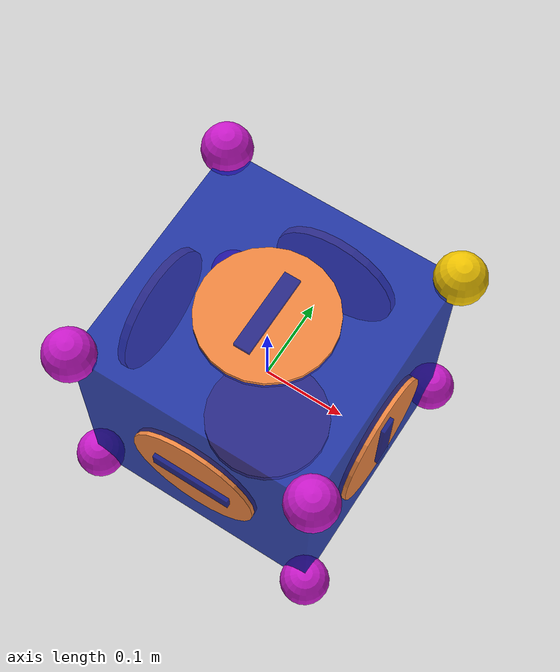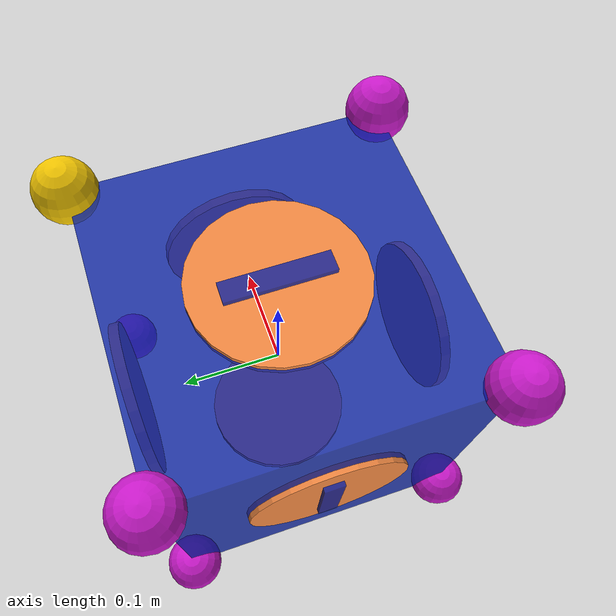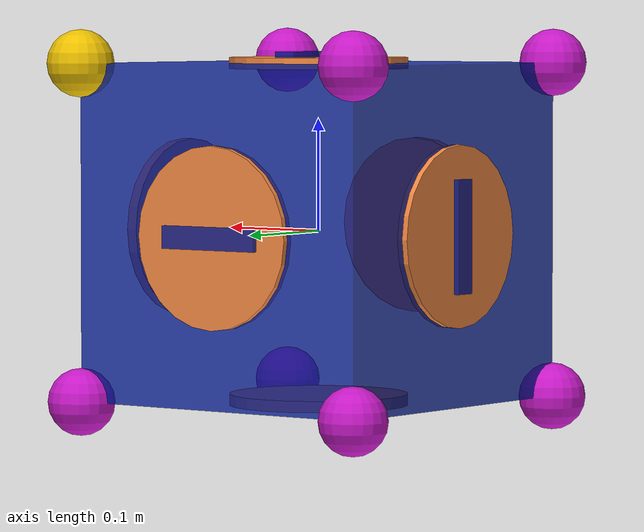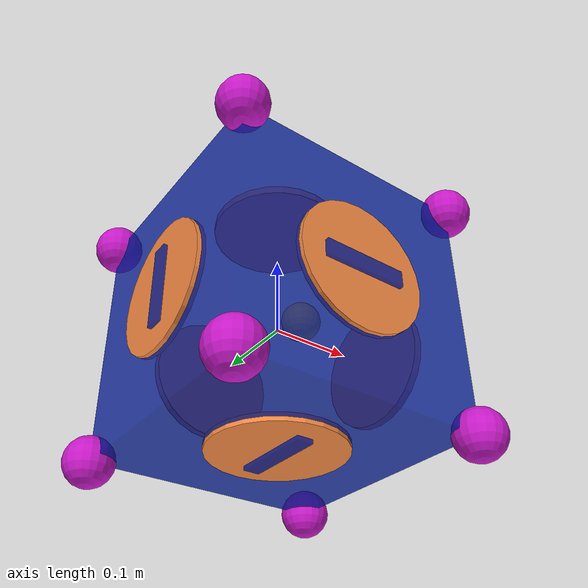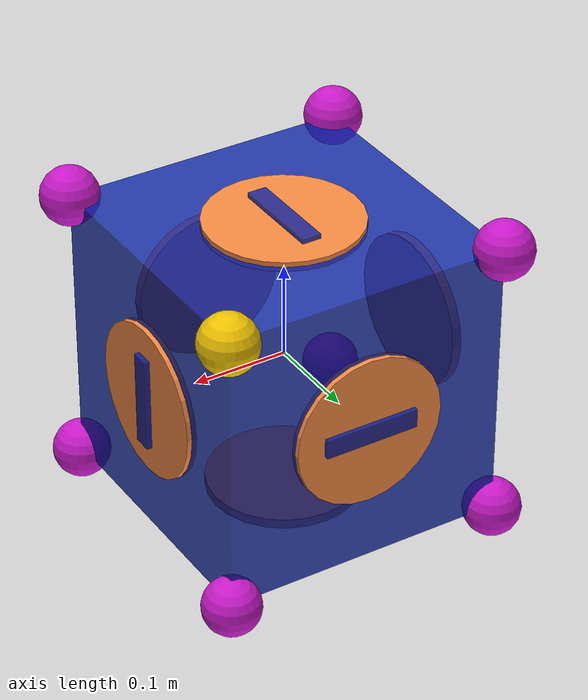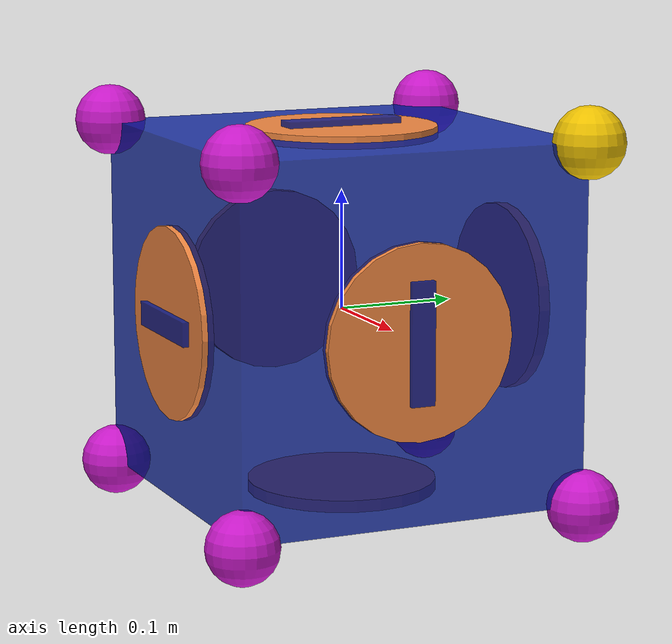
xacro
<?xml version="1.0"?>

<robot name="CubeBot" xmlns:xacro="http://ros.org/wiki/xacro">
    <!-- Properties -->
    <!-- Colors -->
    <xacro:property name="Black" value="0.1 0.1 0.1 1" />
    <xacro:property name="Grey" value="0.35 0.35 0.35 1" />
    <xacro:property name="Orange" value=".9569 .5372 .2588 1" />
    <xacro:property name="Blue" value=".0157 .1176 .6588 0.8" />
    <xacro:property name="Maize" value=".9451 .7686 0 1" />
    <xacro:property name="LightGrey" value="0.75 0.75 0.75 1" />
    <xacro:property name="Red" value="0.8 0.1 0.1 1" />
    <xacro:property name="Green" value="0.1 0.8 0.1 1" />
    <xacro:property name="Purple" value="0.8 0.1 0.8 1" />
    <!-- Physical Properties -->
    <xacro:property name="BodyLen" value="0.3" />
    <xacro:property name="BodyMass" value="0.1" />
    <xacro:property name="BodyInertialValue" value="${1/6*BodyMass*BodyLen*BodyLen}" />
    <xacro:property name="CornerMass" value="0.01" />
    <xacro:property name="CornerRadius" value="0.03" />
    <xacro:property name="CornerInertialValue" value="${2/5*CornerMass*CornerRadius*CornerRadius}" />
    <xacro:property name="CornerOffset" value="${BodyLen/2}" />
    <xacro:property name="WheelMass" value="0.25" />
    <xacro:property name="WheelRadius1" value="0.1" />
    <xacro:property name="WheelRadius2" value="0.08" />
    <xacro:property name="WheelHeight" value="0.01" />
    <xacro:property name="WheelInertialValue1" value="${1/12*WheelMass*(3*(WheelRadius2*WheelRadius2+WheelRadius1*WheelRadius1)+WheelHeight*WheelHeight)}" />
    <xacro:property name="WheelInertialValue2" value="${1/2*WheelMass*(WheelRadius2*WheelRadius2+WheelRadius1*WheelRadius1)}" />
    <xacro:property name="WheelOffset" value="${BodyLen/2}" />

    <!-- Color Definitions-->
    <xacro:macro name="Mat" params="cname color">
        <material name="${cname}">
            <color rgba="${color}"/>
        </material>
    </xacro:macro>
    <xacro:Mat cname="Black" color="${Black}"/>
    <xacro:Mat cname="Grey" color="${Grey}"/>
    <xacro:Mat cname="Orange" color="${Orange}"/>
    <xacro:Mat cname="Blue" color="${Blue}"/>
    <xacro:Mat cname="Maize" color="${Maize}"/>
    <xacro:Mat cname="LightGrey" color="${LightGrey}"/>
    <xacro:Mat cname="Red" color="${Red}"/>
    <xacro:Mat cname="Green" color="${Green}"/>
    <xacro:Mat cname="Purple" color="${Purple}"/>

    <!-- Link Definitions-->
    <xacro:macro name="CubeBody" params="cname color">
        <link name="CubeBody">
            <visual>
                <origin xyz="0 0 0" rpy="0 0 0"/>
                <geometry>
                    <box size="${BodyLen} ${BodyLen} ${BodyLen}"/>
                </geometry>
                <material name="${cname}">
                    <color rgba="${color}"/>
                </material>
            </visual>
            <collision>
                <origin xyz="0 0 0" rpy="0 0 0"/>
                <geometry>
                    <box size="${BodyLen} ${BodyLen} ${BodyLen}"/>
                </geometry>
            </collision>
            <inertial>
                <origin xyz="0 0 0" rpy="0 0 0"/>
                <mass value="${BodyMass}"/>
                <inertia ixx="${BodyInertialValue}" ixy="0" ixz="0" iyy="${BodyInertialValue}" iyz="0.0" izz="${BodyInertialValue}"/>
            </inertial>
        </link>
    </xacro:macro>

    <xacro:macro name="CornerBumper" params="id_num cname color">
        <link name="CornerBumper_${id_num}">
            <visual>
                <origin xyz="0 0 0" rpy="0 0 0"/>
                <geometry>
                    <sphere radius="${CornerRadius}"/>
                </geometry>
                <material name="${cname}">
                    <color rgba="${color}"/>
                </material>
            </visual>
            <collision>
                <origin xyz="0 0 0" rpy="0 0 0"/>
                <geometry>
                    <sphere radius="${CornerRadius}"/>
                </geometry>
            </collision>
            <inertial>
                <origin xyz="0 0 0" rpy="0 0 0"/>
                <mass value="${CornerMass}"/>
                <inertia ixx="${CornerInertialValue}" ixy="0" ixz="0" iyy="${CornerInertialValue}" iyz="0.0" izz="${CornerInertialValue}"/>
            </inertial>
        </link>
    </xacro:macro>

    <xacro:macro name="InertialWheel" params="id_num cname color">
        <link name="InertialWheel_${id_num}">
            <visual>
                <origin xyz="0 0 0" rpy="0 0 0"/>
                <geometry>
                    <cylinder length="${WheelHeight}" radius="${WheelRadius2}"/>
                </geometry>
                <material name="${cname}">
                    <color rgba="${color}"/>
                </material>
            </visual>
            <inertial>
                <origin xyz="0 0 0" rpy="0 0 0"/>
                <mass value="${WheelMass}"/>
                <inertia ixx="${WheelInertialValue1}" ixy="0" ixz="0" iyy="${WheelInertialValue1}" iyz="0.0" izz="${WheelInertialValue2}"/>
            </inertial>
        </link>
    </xacro:macro>

    <xacro:macro name="WheelMarker" params="id_num cname color">
        <link name="WheelMarker_${id_num}">
            <visual>
                <origin xyz="0 0 0" rpy="0 0 0"/>
                <geometry>
                    <box size="${WheelRadius2*1.25} ${WheelHeight*2} ${WheelHeight*2}"/>
                </geometry>
                <material name="${cname}">
                    <color rgba="${color}"/>
                </material>
            </visual>
            <inertial>
                <origin xyz="0 0 0" rpy="0 0 0"/>
                <mass value="0.01"/>
            </inertial>
        </link>
    </xacro:macro>

    <!-- Joint Definitions -->
    <xacro:macro name="fixedJoint" params="parent child pos rot">
        <joint name="$fixed_${parent}_${child}" type="fixed">
            <origin xyz="${pos}" rpy="${rot}"/>
            <parent link="${parent}" />
            <child link="${child}" />
        </joint>
    </xacro:macro>
    <xacro:macro name="continuous" params="parent child pos rot axis damp fric">
        <joint name="$continuous_${parent}_${child}" type="continuous">
            <origin xyz="${pos}" rpy="${rot}"/>
            <parent link="${parent}" />
            <child link="${child}" />
            <axis xyz="${axis}"/>
            <dynamics damping="${damp}" friction="${fric}"/>
        </joint>
    </xacro:macro>

    <!-- Links -->
    <xacro:CubeBody cname="Blue" color="${Blue}"/>
    <xacro:CornerBumper id_num = "1" cname="Maize" color="${Maize}" />
    <xacro:CornerBumper id_num = "2" cname="Purple" color="${Purple}" />
    <xacro:CornerBumper id_num = "3" cname="Purple" color="${Purple}" />
    <xacro:CornerBumper id_num = "4" cname="Purple" color="${Purple}" />
    <xacro:CornerBumper id_num = "5" cname="Purple" color="${Purple}" />
    <xacro:CornerBumper id_num = "6" cname="Purple" color="${Purple}" />
    <xacro:CornerBumper id_num = "7" cname="Purple" color="${Purple}" />
    <xacro:CornerBumper id_num = "8" cname="Purple" color="${Purple}" />
    <xacro:InertialWheel id_num = "1" cname="Orange" color="${Orange}" />
    <xacro:InertialWheel id_num = "2" cname="Orange" color="${Orange}" />
    <xacro:InertialWheel id_num = "3" cname="Orange" color="${Orange}" />
    <xacro:InertialWheel id_num = "4" cname="Orange" color="${Orange}" />
    <xacro:InertialWheel id_num = "5" cname="Orange" color="${Orange}" />
    <xacro:InertialWheel id_num = "6" cname="Orange" color="${Orange}" />
    <xacro:WheelMarker id_num = "1" cname="Blue" color="${Blue}" />
    <xacro:WheelMarker id_num = "2" cname="Blue" color="${Blue}" />
    <xacro:WheelMarker id_num = "3" cname="Blue" color="${Blue}" />
    <xacro:WheelMarker id_num = "4" cname="Blue" color="${Blue}" />
    <xacro:WheelMarker id_num = "5" cname="Blue" color="${Blue}" />
    <xacro:WheelMarker id_num = "6" cname="Blue" color="${Blue}" />

    <!-- Joints -->
    <xacro:fixedJoint parent="CubeBody" child="CornerBumper_1" pos="${CornerOffset} ${CornerOffset} ${CornerOffset}" rot="0 0 0" />
    <xacro:fixedJoint parent="CubeBody" child="CornerBumper_2" pos="-${CornerOffset} ${CornerOffset} ${CornerOffset}" rot="0 0 0" />
    <xacro:fixedJoint parent="CubeBody" child="CornerBumper_3" pos="${CornerOffset} -${CornerOffset} ${CornerOffset}" rot="0 0 0" />
    <xacro:fixedJoint parent="CubeBody" child="CornerBumper_4" pos="-${CornerOffset} -${CornerOffset} ${CornerOffset}" rot="0 0 0" />
    <xacro:fixedJoint parent="CubeBody" child="CornerBumper_5" pos="${CornerOffset} ${CornerOffset} -${CornerOffset}" rot="0 0 0" />
    <xacro:fixedJoint parent="CubeBody" child="CornerBumper_6" pos="-${CornerOffset} ${CornerOffset} -${CornerOffset}" rot="0 0 0" />
    <xacro:fixedJoint parent="CubeBody" child="CornerBumper_7" pos="${CornerOffset} -${CornerOffset} -${CornerOffset}" rot="0 0 0" />
    <xacro:fixedJoint parent="CubeBody" child="CornerBumper_8" pos="-${CornerOffset} -${CornerOffset} -${CornerOffset}" rot="0 0 0" />
    <xacro:continuous parent="CubeBody" child="InertialWheel_1" pos="${WheelOffset} 0 0" rot="0 1.57075 0"  axis="0 0 1" damp="0" fric="0" />
    <xacro:continuous parent="CubeBody" child="InertialWheel_2" pos="-${WheelOffset} 0 0" rot="0 1.57075 0"  axis="0 0 1" damp="0" fric="0" />
    <xacro:continuous parent="CubeBody" child="InertialWheel_3" pos="0 ${WheelOffset} 0" rot="1.57075 0 0"  axis="0 0 1" damp="0" fric="0" />
    <xacro:continuous parent="CubeBody" child="InertialWheel_4" pos="0 -${WheelOffset} 0" rot="1.57075 0 0"  axis="0 0 1" damp="0" fric="0" />
    <xacro:continuous parent="CubeBody" child="InertialWheel_5" pos="0 0 ${WheelOffset}" rot="0 0 1.57075"  axis="0 0 1" damp="0" fric="0" />
    <xacro:continuous parent="CubeBody" child="InertialWheel_6" pos="0 0 -${WheelOffset}" rot="0 0 1.57075"  axis="0 0 1" damp="0" fric="0" />
    <xacro:fixedJoint parent="InertialWheel_1" child="WheelMarker_1" pos="0 0 0.0001" rot="0 0 0" />
    <xacro:fixedJoint parent="InertialWheel_2" child="WheelMarker_2" pos="0 0 0.0001" rot="0 0 0" />
    <xacro:fixedJoint parent="InertialWheel_3" child="WheelMarker_3" pos="0 0 0.0001" rot="0 0 0" />
    <xacro:fixedJoint parent="InertialWheel_4" child="WheelMarker_4" pos="0 0 0.0001" rot="0 0 0" />
    <xacro:fixedJoint parent="InertialWheel_5" child="WheelMarker_5" pos="0 0 0.0001" rot="0 0 0" />
    <xacro:fixedJoint parent="InertialWheel_6" child="WheelMarker_6" pos="0 0 0.0001" rot="0 0 0" />
</robot>
